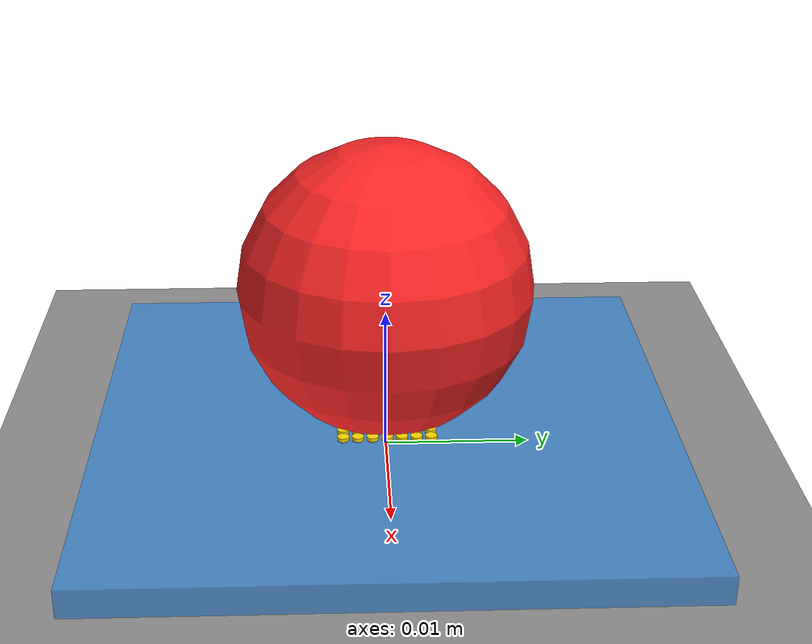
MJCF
<mujoco model="em_sensor_rolling">
  <option gravity="0 0 -9.81" timestep="0.00833"
          solver="Newton" integrator="implicit"
          cone="elliptic" impratio="10"/>

  <default>
    <geom condim="3" solref="0.02 1.0"
          solimp="0.95 0.999 0.001" friction="1.5 0.5 0.01"/>
  </default>

  <worldbody>
    <light pos="0 0 1" dir="0 0 -1"/>
    <geom name="ground" type="plane" size="0.2 0.2 0.01" rgba="0.55 0.55 0.55 1"/>

    <!-- Sensor pad: 40x40mm physical surface, fixed to world -->
    <body name="sensor_body" pos="0 0 0.001">
      <geom name="sensor_pad" type="box"
            size="0.020 0.020 0.001"
            rgba="0.2 0.55 0.9 0.7" mass="0.05"/>
      <!-- 7x7 sensor cell markers: yellow cylinders at each cell centre -->
      <!-- x,y in {-3,-2,-1,0,1,2,3}mm; z=0.0011 (just above pad top at local z=0.001) -->
      <site name="cell_r0c0" type="cylinder" size="0.0004 0.00015" pos="-0.0030 -0.0030 0.0011" rgba="1 0.85 0 1"/>
      <site name="cell_r0c1" type="cylinder" size="0.0004 0.00015" pos="-0.0020 -0.0030 0.0011" rgba="1 0.85 0 1"/>
      <site name="cell_r0c2" type="cylinder" size="0.0004 0.00015" pos="-0.0010 -0.0030 0.0011" rgba="1 0.85 0 1"/>
      <site name="cell_r0c3" type="cylinder" size="0.0004 0.00015" pos=" 0.0000 -0.0030 0.0011" rgba="1 0.85 0 1"/>
      <site name="cell_r0c4" type="cylinder" size="0.0004 0.00015" pos=" 0.0010 -0.0030 0.0011" rgba="1 0.85 0 1"/>
      <site name="cell_r0c5" type="cylinder" size="0.0004 0.00015" pos=" 0.0020 -0.0030 0.0011" rgba="1 0.85 0 1"/>
      <site name="cell_r0c6" type="cylinder" size="0.0004 0.00015" pos=" 0.0030 -0.0030 0.0011" rgba="1 0.85 0 1"/>

      <site name="cell_r1c0" type="cylinder" size="0.0004 0.00015" pos="-0.0030 -0.0020 0.0011" rgba="1 0.85 0 1"/>
      <site name="cell_r1c1" type="cylinder" size="0.0004 0.00015" pos="-0.0020 -0.0020 0.0011" rgba="1 0.85 0 1"/>
      <site name="cell_r1c2" type="cylinder" size="0.0004 0.00015" pos="-0.0010 -0.0020 0.0011" rgba="1 0.85 0 1"/>
      <site name="cell_r1c3" type="cylinder" size="0.0004 0.00015" pos=" 0.0000 -0.0020 0.0011" rgba="1 0.85 0 1"/>
      <site name="cell_r1c4" type="cylinder" size="0.0004 0.00015" pos=" 0.0010 -0.0020 0.0011" rgba="1 0.85 0 1"/>
      <site name="cell_r1c5" type="cylinder" size="0.0004 0.00015" pos=" 0.0020 -0.0020 0.0011" rgba="1 0.85 0 1"/>
      <site name="cell_r1c6" type="cylinder" size="0.0004 0.00015" pos=" 0.0030 -0.0020 0.0011" rgba="1 0.85 0 1"/>

      <site name="cell_r2c0" type="cylinder" size="0.0004 0.00015" pos="-0.0030 -0.0010 0.0011" rgba="1 0.85 0 1"/>
      <site name="cell_r2c1" type="cylinder" size="0.0004 0.00015" pos="-0.0020 -0.0010 0.0011" rgba="1 0.85 0 1"/>
      <site name="cell_r2c2" type="cylinder" size="0.0004 0.00015" pos="-0.0010 -0.0010 0.0011" rgba="1 0.85 0 1"/>
      <site name="cell_r2c3" type="cylinder" size="0.0004 0.00015" pos=" 0.0000 -0.0010 0.0011" rgba="1 0.85 0 1"/>
      <site name="cell_r2c4" type="cylinder" size="0.0004 0.00015" pos=" 0.0010 -0.0010 0.0011" rgba="1 0.85 0 1"/>
      <site name="cell_r2c5" type="cylinder" size="0.0004 0.00015" pos=" 0.0020 -0.0010 0.0011" rgba="1 0.85 0 1"/>
      <site name="cell_r2c6" type="cylinder" size="0.0004 0.00015" pos=" 0.0030 -0.0010 0.0011" rgba="1 0.85 0 1"/>

      <site name="cell_r3c0" type="cylinder" size="0.0004 0.00015" pos="-0.0030  0.0000 0.0011" rgba="1 0.85 0 1"/>
      <site name="cell_r3c1" type="cylinder" size="0.0004 0.00015" pos="-0.0020  0.0000 0.0011" rgba="1 0.85 0 1"/>
      <site name="cell_r3c2" type="cylinder" size="0.0004 0.00015" pos="-0.0010  0.0000 0.0011" rgba="1 0.85 0 1"/>
      <site name="cell_r3c3" type="cylinder" size="0.0004 0.00015" pos=" 0.0000  0.0000 0.0011" rgba="1 0.85 0 1"/>
      <site name="cell_r3c4" type="cylinder" size="0.0004 0.00015" pos=" 0.0010  0.0000 0.0011" rgba="1 0.85 0 1"/>
      <site name="cell_r3c5" type="cylinder" size="0.0004 0.00015" pos=" 0.0020  0.0000 0.0011" rgba="1 0.85 0 1"/>
      <site name="cell_r3c6" type="cylinder" size="0.0004 0.00015" pos=" 0.0030  0.0000 0.0011" rgba="1 0.85 0 1"/>

      <site name="cell_r4c0" type="cylinder" size="0.0004 0.00015" pos="-0.0030  0.0010 0.0011" rgba="1 0.85 0 1"/>
      <site name="cell_r4c1" type="cylinder" size="0.0004 0.00015" pos="-0.0020  0.0010 0.0011" rgba="1 0.85 0 1"/>
      <site name="cell_r4c2" type="cylinder" size="0.0004 0.00015" pos="-0.0010  0.0010 0.0011" rgba="1 0.85 0 1"/>
      <site name="cell_r4c3" type="cylinder" size="0.0004 0.00015" pos=" 0.0000  0.0010 0.0011" rgba="1 0.85 0 1"/>
      <site name="cell_r4c4" type="cylinder" size="0.0004 0.00015" pos=" 0.0010  0.0010 0.0011" rgba="1 0.85 0 1"/>
      <site name="cell_r4c5" type="cylinder" size="0.0004 0.00015" pos=" 0.0020  0.0010 0.0011" rgba="1 0.85 0 1"/>
      <site name="cell_r4c6" type="cylinder" size="0.0004 0.00015" pos=" 0.0030  0.0010 0.0011" rgba="1 0.85 0 1"/>

      <site name="cell_r5c0" type="cylinder" size="0.0004 0.00015" pos="-0.0030  0.0020 0.0011" rgba="1 0.85 0 1"/>
      <site name="cell_r5c1" type="cylinder" size="0.0004 0.00015" pos="-0.0020  0.0020 0.0011" rgba="1 0.85 0 1"/>
      <site name="cell_r5c2" type="cylinder" size="0.0004 0.00015" pos="-0.0010  0.0020 0.0011" rgba="1 0.85 0 1"/>
      <site name="cell_r5c3" type="cylinder" size="0.0004 0.00015" pos=" 0.0000  0.0020 0.0011" rgba="1 0.85 0 1"/>
      <site name="cell_r5c4" type="cylinder" size="0.0004 0.00015" pos=" 0.0010  0.0020 0.0011" rgba="1 0.85 0 1"/>
      <site name="cell_r5c5" type="cylinder" size="0.0004 0.00015" pos=" 0.0020  0.0020 0.0011" rgba="1 0.85 0 1"/>
      <site name="cell_r5c6" type="cylinder" size="0.0004 0.00015" pos=" 0.0030  0.0020 0.0011" rgba="1 0.85 0 1"/>

      <site name="cell_r6c0" type="cylinder" size="0.0004 0.00015" pos="-0.0030  0.0030 0.0011" rgba="1 0.85 0 1"/>
      <site name="cell_r6c1" type="cylinder" size="0.0004 0.00015" pos="-0.0020  0.0030 0.0011" rgba="1 0.85 0 1"/>
      <site name="cell_r6c2" type="cylinder" size="0.0004 0.00015" pos="-0.0010  0.0030 0.0011" rgba="1 0.85 0 1"/>
      <site name="cell_r6c3" type="cylinder" size="0.0004 0.00015" pos=" 0.0000  0.0030 0.0011" rgba="1 0.85 0 1"/>
      <site name="cell_r6c4" type="cylinder" size="0.0004 0.00015" pos=" 0.0010  0.0030 0.0011" rgba="1 0.85 0 1"/>
      <site name="cell_r6c5" type="cylinder" size="0.0004 0.00015" pos=" 0.0020  0.0030 0.0011" rgba="1 0.85 0 1"/>
      <site name="cell_r6c6" type="cylinder" size="0.0004 0.00015" pos=" 0.0030  0.0030 0.0011" rgba="1 0.85 0 1"/>
    </body>

    <!-- Ball: 10mm radius (20mm diameter), 100g — large and visible -->
    <!-- z = pad_top(0.002) + ball_radius(0.010) = 0.012 -->
    <body name="ball" pos="0 0 0.012">
      <joint name="ball_joint" type="free"/>
      <geom name="ball_geom" type="sphere" size="0.010"
            mass="0.100" rgba="1 0.15 0.15 1"/>
    </body>
  </worldbody>

  <!-- Ball starts at sensor centre, stationary — user pushes with Ctrl+drag -->
  <keyframe>
    <key name="roll"
         qpos="0 0 0.012 1 0 0 0"
         qvel="0 0 0  0 0 0"/>
  </keyframe>

  <sensor>
    <user name="EM_SENSOR" dim="151"
          objtype="geom" objname="sensor_pad"/>
  </sensor>
</mujoco>
